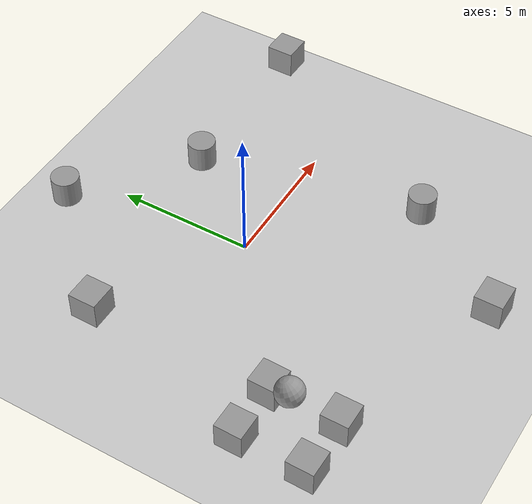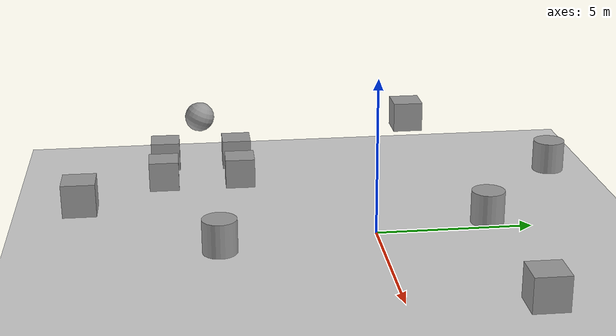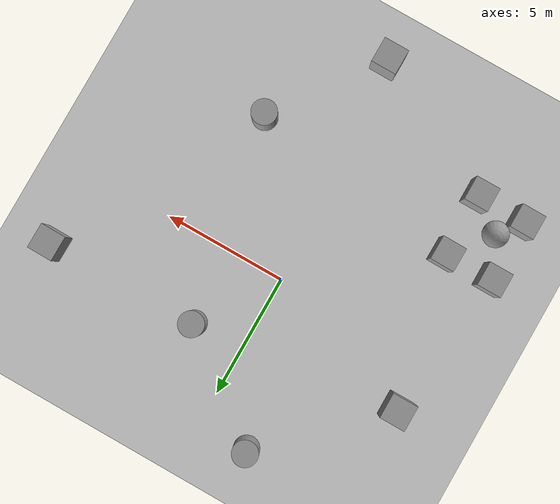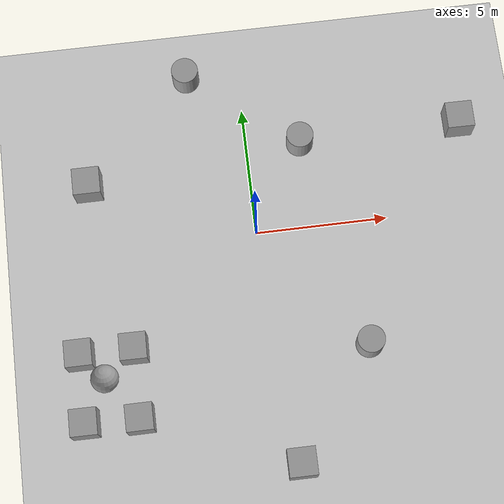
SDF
<sdf version="1.4">
 <world name="default">
  <light name="sun" type="directional">
   <pose>0 0 10 0 -0 0</pose>
   <diffuse>0.8 0.8 0.8 1</diffuse>
   <specular>0.2 0.2 0.2 1</specular>
   <attenuation>
    <range>1000</range>
    <constant>0.9</constant>
    <linear>0.01</linear>
    <quadratic>0.001</quadratic>
   </attenuation>
   <direction>-0.5 0.1 -0.9</direction>
  </light>
  <model name="ground_plane">
   <static>1</static>
   <link name="link">
    <collision name="collision">
     <geometry><plane><normal>0 0 1</normal><size>100 100</size></plane></geometry>
     <surface><friction><ode><mu>100</mu><mu2>50</mu2></ode></friction></surface>
    </collision>
    <visual name="visual">
     <cast_shadows>0</cast_shadows>
     <geometry><plane><normal>0 0 1</normal><size>100 100</size></plane></geometry>
     <material>
      <script><uri>file://media/materials/scripts/gazebo.material</uri><name>Gazebo/Grey</name></script>
     </material>
    </visual>
    <velocity_decay><linear>0</linear><angular>0</angular></velocity_decay>
   </link>
  </model>
  <physics type="ode">
   <max_step_size>0.001</max_step_size>
   <real_time_factor>1</real_time_factor>
   <real_time_update_rate>1000</real_time_update_rate>
   <gravity>0 0 -9.8</gravity>
  </physics>
  <scene><ambient>0.4 0.4 0.4 1</ambient><background>0.7 0.7 0.7 1</background><shadows>1</shadows></scene>
  <spherical_coordinates>
   <surface_model>EARTH_WGS84</surface_model>
   <latitude_deg>0</latitude_deg>
   <longitude_deg>0</longitude_deg>
   <elevation>0</elevation>
   <heading_deg>0</heading_deg>
  </spherical_coordinates>
  <model name="unit_cylinder_2">
   <pose>3.53135 -5 1.68827 0 -0 6e-06</pose>
   <link name="link">
    <inertial>
     <mass>1</mass>
     <inertia><ixx>1</ixx><ixy>0</ixy><ixz>0</ixz><iyy>1</iyy><iyz>0</iyz><izz>1</izz></inertia>
    </inertial>
    <collision name="collision">
     <geometry><cylinder><radius>0.5</radius><length>3.37655</length></cylinder></geometry>
    </collision>
    <visual name="visual">
     <geometry><cylinder><radius>0.5</radius><length>1</length></cylinder></geometry>
     <material>
      <script><uri>file://media/materials/scripts/gazebo.material</uri><name>Gazebo/Grey</name></script>
     </material>
    </visual>
    <velocity_decay><linear>0</linear><angular>0</angular></velocity_decay>
   </link>
   <static>0</static>
  </model>
  <model name="unit_box_10">
   <pose>-6 2 1.97851 0 -0 0.00013</pose>
   <link name="link">
    <inertial>
     <mass>1</mass>
     <inertia><ixx>1</ixx><ixy>0</ixy><ixz>0</ixz><iyy>1</iyy><iyz>0</iyz><izz>1</izz></inertia>
    </inertial>
    <collision name="collision"><geometry><box><size>1 3.83144 3.95702</size></box></geometry></collision>
    <visual name="visual">
     <geometry><box><size>1 1 1</size></box></geometry>
     <material>
      <script><uri>file://media/materials/scripts/gazebo.material</uri><name>Gazebo/Grey</name></script>
     </material>
    </visual>
    <velocity_decay><linear>0</linear><angular>0</angular></velocity_decay>
   </link>
   <static>0</static>
  </model>
  <model name="unit_cylinder_3">
   <pose>2.00001 3.00001 1.56136 0 -0 1.2e-05</pose>
   <link name="link">
    <inertial>
     <mass>1</mass>
     <inertia><ixx>1</ixx><ixy>0</ixy><ixz>0</ixz><iyy>1</iyy><iyz>0</iyz><izz>1</izz></inertia>
    </inertial>
    <collision name="collision">
     <geometry><cylinder><radius>0.5</radius><length>3.12273</length></cylinder></geometry>
    </collision>
    <visual name="visual">
     <geometry><cylinder><radius>0.5</radius><length>1</length></cylinder></geometry>
     <material>
      <script><uri>file://media/materials/scripts/gazebo.material</uri><name>Gazebo/Grey</name></script>
     </material>
    </visual>
    <velocity_decay><linear>0</linear><angular>0</angular></velocity_decay>
   </link>
   <static>0</static>
  </model>
  <model name="unit_cylinder_4">
   <pose>-2.00001 6.03804 1.65004 0 0 -1e-06</pose>
   <link name="link">
    <inertial>
     <mass>1</mass>
     <inertia><ixx>1</ixx><ixy>0</ixy><ixz>0</ixz><iyy>1</iyy><iyz>0</iyz><izz>1</izz></inertia>
    </inertial>
    <collision name="collision">
     <geometry><cylinder><radius>0.548385</radius><length>3.30008</length></cylinder></geometry>
    </collision>
    <visual name="visual">
     <geometry><cylinder><radius>0.5</radius><length>1</length></cylinder></geometry>
     <material>
      <script><uri>file://media/materials/scripts/gazebo.material</uri><name>Gazebo/Grey</name></script>
     </material>
    </visual>
    <velocity_decay><linear>0</linear><angular>0</angular></velocity_decay>
   </link>
   <static>0</static>
  </model>
  <model name="unit_box_11">
   <pose>-7.00522 -6.52535 0.5 -1e-06 1e-06 -0.008461</pose>
   <link name="link">
    <inertial>
     <mass>1</mass>
     <inertia><ixx>1</ixx><ixy>0</ixy><ixz>0</ixz><iyy>1</iyy><iyz>0</iyz><izz>1</izz></inertia>
    </inertial>
    <collision name="collision"><geometry><box><size>1 1 1</size></box></geometry></collision>
    <visual name="visual">
     <geometry><box><size>1 1 1</size></box></geometry>
     <material>
      <script><uri>file://media/materials/scripts/gazebo.material</uri><name>Gazebo/Grey</name></script>
     </material>
    </visual>
    <velocity_decay><linear>0</linear><angular>0</angular></velocity_decay>
   </link>
   <static>0</static>
  </model>
  <model name="unit_box_12">
   <pose>-4.99817 -6.58669 0.5 0 -0 0.001378</pose>
   <link name="link">
    <inertial>
     <mass>1</mass>
     <inertia><ixx>1</ixx><ixy>0</ixy><ixz>0</ixz><iyy>1</iyy><iyz>0</iyz><izz>1</izz></inertia>
    </inertial>
    <collision name="collision"><geometry><box><size>1 1 1</size></box></geometry></collision>
    <visual name="visual">
     <geometry><box><size>1 1 1</size></box></geometry>
     <material>
      <script><uri>file://media/materials/scripts/gazebo.material</uri><name>Gazebo/Grey</name></script>
     </material>
    </visual>
    <velocity_decay><linear>0</linear><angular>0</angular></velocity_decay>
   </link>
   <static>0</static>
  </model>
  <model name="unit_box_14">
   <pose>-7.00072 -3.99916 0.5 0 -0 0.000318</pose>
   <link name="link">
    <inertial>
     <mass>1</mass>
     <inertia><ixx>1</ixx><ixy>0</ixy><ixz>0</ixz><iyy>1</iyy><iyz>0</iyz><izz>1</izz></inertia>
    </inertial>
    <collision name="collision"><geometry><box><size>1 1 1</size></box></geometry></collision>
    <visual name="visual">
     <geometry><box><size>1 1 1</size></box></geometry>
     <material>
      <script><uri>file://media/materials/scripts/gazebo.material</uri><name>Gazebo/Grey</name></script>
     </material>
    </visual>
    <velocity_decay><linear>0</linear><angular>0</angular></velocity_decay>
   </link>
   <static>0</static>
  </model>
  <model name="unit_box_15">
   <pose>-4.99634 -3.98342 0.5 1e-06 -1e-06 -0.013826</pose>
   <link name="link">
    <inertial>
     <mass>1</mass>
     <inertia><ixx>1</ixx><ixy>0</ixy><ixz>0</ixz><iyy>1</iyy><iyz>0</iyz><izz>1</izz></inertia>
    </inertial>
    <collision name="collision"><geometry><box><size>1 1 1</size></box></geometry></collision>
    <visual name="visual">
     <geometry><box><size>1 1 1</size></box></geometry>
     <material>
      <script><uri>file://media/materials/scripts/gazebo.material</uri><name>Gazebo/Grey</name></script>
     </material>
    </visual>
    <velocity_decay><linear>0</linear><angular>0</angular></velocity_decay>
   </link>
   <static>0</static>
  </model>
  <model name="unit_sphere_2">
   <pose>-5.95543 -5.28301 2.15012 -0.435042 0.037894 0.014415</pose>
   <link name="link">
    <inertial>
     <mass>1</mass>
     <inertia><ixx>1</ixx><ixy>0</ixy><ixz>0</ixz><iyy>1</iyy><iyz>0</iyz><izz>1</izz></inertia>
    </inertial>
    <collision name="collision"><geometry><sphere><radius>1.47575</radius></sphere></geometry></collision>
    <visual name="visual">
     <geometry><sphere><radius>0.5</radius></sphere></geometry>
     <material>
      <script><uri>file://media/materials/scripts/gazebo.material</uri><name>Gazebo/Grey</name></script>
     </material>
    </visual>
    <velocity_decay><linear>0</linear><angular>0</angular></velocity_decay>
   </link>
   <static>0</static>
  </model>
  <model name="unit_box_17">
   <pose>0.55537 -9.00043 1.91207 -1e-06 1.7e-05 -0.003555</pose>
   <link name="link">
    <inertial>
     <mass>1</mass>
     <inertia><ixx>1</ixx><ixy>0</ixy><ixz>0</ixz><iyy>1</iyy><iyz>0</iyz><izz>1</izz></inertia>
    </inertial>
    <collision name="collision"><geometry><box><size>6.94017 1 3.82425</size></box></geometry></collision>
    <visual name="visual">
     <geometry><box><size>1 1 1</size></box></geometry>
     <material>
      <script><uri>file://media/materials/scripts/gazebo.material</uri><name>Gazebo/Grey</name></script>
     </material>
    </visual>
    <velocity_decay><linear>0</linear><angular>0</angular></velocity_decay>
   </link>
   <static>0</static>
  </model>
  <model name="unit_box_18">
   <pose>7.98875 3.00735 1.76886 0.000163 4e-06 -0.009093</pose>
   <link name="link">
    <inertial>
     <mass>1</mass>
     <inertia><ixx>1</ixx><ixy>0</ixy><ixz>0</ixz><iyy>1</iyy><iyz>0</iyz><izz>1</izz></inertia>
    </inertial>
    <collision name="collision"><geometry><box><size>1 10.7748 3.53947</size></box></geometry></collision>
    <visual name="visual">
     <geometry><box><size>1 1 1</size></box></geometry>
     <material>
      <script><uri>file://media/materials/scripts/gazebo.material</uri><name>Gazebo/Grey</name></script>
     </material>
    </visual>
    <velocity_decay><linear>0</linear><angular>0</angular></velocity_decay>
   </link>
   <static>0</static>
  </model>
 </world>
</sdf>
